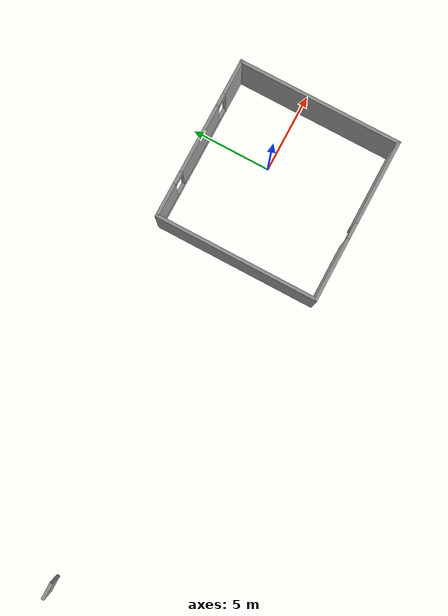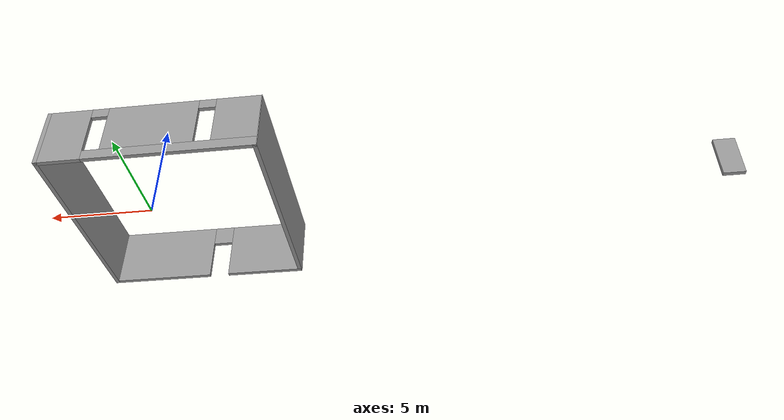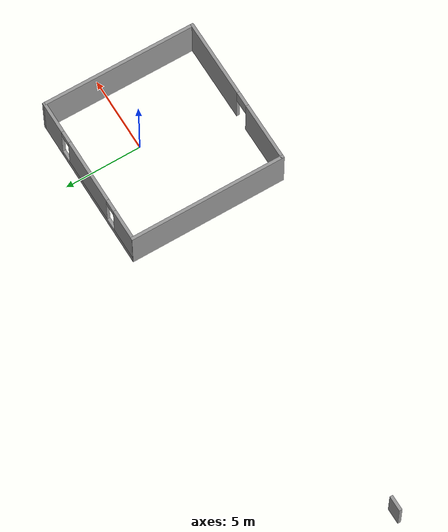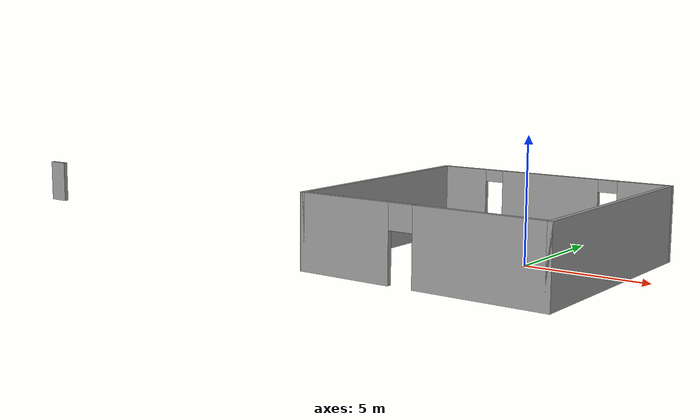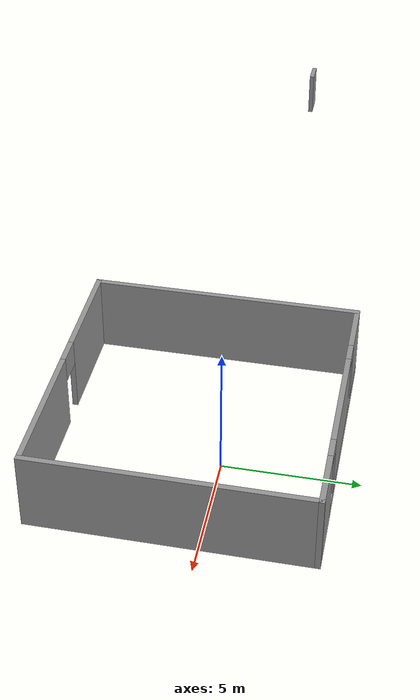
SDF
<?xml version='1.0'?>
<sdf version='1.4'>
  <model name='NASLab'>
    <link name='Door_0'>
      <collision name='Door_0_Collision'>
        <geometry>
          <box>
            <size>1 0.2 2</size>
          </box>
        </geometry>
        <pose>0 0 1 0 -0 0</pose>
      </collision>
      <visual name='Door_0_Visual'>
        <pose>0 0 1 0 -0 0</pose>
        <geometry>
          <box>
            <size>1 0.2 2</size>
          </box>
        </geometry>
        <material>
          <script>
            <uri>file://media/materials/scripts/gazebo.material</uri>
            <name>Gazebo/Grey</name>
          </script>
        </material>
      </visual>
      <velocity_decay>
        <linear>0</linear>
        <angular>0</angular>
      </velocity_decay>
      <pose>-27.0979 -0.482128 0 0 -0 0</pose>
    </link>
    <link name='Wall_10'>
      <pose>-1 4 0 0 -0 3.14159</pose>
      <visual name='Wall_10_Visual_0'>
        <pose>-4.00121 0 1.5 0 -0 0</pose>
        <geometry>
          <box>
            <size>2.19758 0.2 3</size>
          </box>
        </geometry>
        <material>
          <script>
            <uri>file://media/materials/scripts/gazebo.material</uri>
            <name>Gazebo/Grey</name>
          </script>
        </material>
      </visual>
      <collision name='Wall_10_Collision_0'>
        <geometry>
          <box>
            <size>2.19758 0.2 3</size>
          </box>
        </geometry>
        <pose>-4.00121 0 1.5 0 -0 0</pose>
      </collision>
      <visual name='Wall_10_Visual_1'>
        <pose>1.09879 0 0.25 0 -0 0</pose>
        <geometry>
          <box>
            <size>8.00242 0.2 0.5</size>
          </box>
        </geometry>
        <material>
          <script>
            <uri>file://media/materials/scripts/gazebo.material</uri>
            <name>Gazebo/Grey</name>
          </script>
        </material>
      </visual>
      <collision name='Wall_10_Collision_1'>
        <geometry>
          <box>
            <size>8.00242 0.2 0.5</size>
          </box>
        </geometry>
        <pose>1.09879 0 0.25 0 -0 0</pose>
      </collision>
      <visual name='Wall_10_Visual_2'>
        <pose>0.048036 0 1.75 0 -0 0</pose>
        <geometry>
          <box>
            <size>4.30092 0.2 2.5</size>
          </box>
        </geometry>
        <material>
          <script>
            <uri>file://media/materials/scripts/gazebo.material</uri>
            <name>Gazebo/Grey</name>
          </script>
        </material>
      </visual>
      <collision name='Wall_10_Collision_2'>
        <geometry>
          <box>
            <size>4.30092 0.2 2.5</size>
          </box>
        </geometry>
        <pose>0.048036 0 1.75 0 -0 0</pose>
      </collision>
      <visual name='Wall_10_Visual_3'>
        <pose>4.04925 0 1.75 0 -0 0</pose>
        <geometry>
          <box>
            <size>2.1015 0.2 2.5</size>
          </box>
        </geometry>
        <material>
          <script>
            <uri>file://media/materials/scripts/gazebo.material</uri>
            <name>Gazebo/Grey</name>
          </script>
        </material>
      </visual>
      <collision name='Wall_10_Collision_3'>
        <geometry>
          <box>
            <size>2.1015 0.2 2.5</size>
          </box>
        </geometry>
        <pose>4.04925 0 1.75 0 -0 0</pose>
      </collision>
      <visual name='Wall_10_Visual_4'>
        <pose>-2.50242 0 2.75 0 -0 0</pose>
        <geometry>
          <box>
            <size>0.8 0.2 0.5</size>
          </box>
        </geometry>
        <material>
          <script>
            <uri>file://media/materials/scripts/gazebo.material</uri>
            <name>Gazebo/Grey</name>
          </script>
        </material>
      </visual>
      <collision name='Wall_10_Collision_4'>
        <geometry>
          <box>
            <size>0.8 0.2 0.5</size>
          </box>
        </geometry>
        <pose>-2.50242 0 2.75 0 -0 0</pose>
      </collision>
      <visual name='Wall_10_Visual_5'>
        <pose>2.5985 0 2.75 0 -0 0</pose>
        <geometry>
          <box>
            <size>0.8 0.2 0.5</size>
          </box>
        </geometry>
        <material>
          <script>
            <uri>file://media/materials/scripts/gazebo.material</uri>
            <name>Gazebo/Grey</name>
          </script>
        </material>
      </visual>
      <collision name='Wall_10_Collision_5'>
        <geometry>
          <box>
            <size>0.8 0.2 0.5</size>
          </box>
        </geometry>
        <pose>2.5985 0 2.75 0 -0 0</pose>
      </collision>
    </link>
    <link name='Wall_12'>
      <collision name='Wall_12_Collision'>
        <geometry>
          <box>
            <size>10.2 0.2 3</size>
          </box>
        </geometry>
        <pose>0 0 1.5 0 -0 0</pose>
      </collision>
      <visual name='Wall_12_Visual'>
        <pose>0 0 1.5 0 -0 0</pose>
        <geometry>
          <box>
            <size>10.2 0.2 3</size>
          </box>
        </geometry>
        <material>
          <script>
            <uri>file://media/materials/scripts/gazebo.material</uri>
            <name>Gazebo/Grey</name>
          </script>
        </material>
      </visual>
      <velocity_decay>
        <linear>0</linear>
        <angular>0</angular>
      </velocity_decay>
      <pose>-6.035 -1 0 0 0 -1.5708</pose>
    </link>
    <link name='Wall_6'>
      <pose>-1 -6 0 0 -0 0</pose>
      <visual name='Wall_6_Visual_0'>
        <pose>-3.13183 0 1.5 0 -0 0</pose>
        <geometry>
          <box>
            <size>3.93634 0.2 3</size>
          </box>
        </geometry>
        <material>
          <script>
            <uri>file://media/materials/scripts/gazebo.material</uri>
            <name>Gazebo/Grey</name>
          </script>
        </material>
      </visual>
      <collision name='Wall_6_Collision_0'>
        <geometry>
          <box>
            <size>3.93634 0.2 3</size>
          </box>
        </geometry>
        <pose>-3.13183 0 1.5 0 -0 0</pose>
      </collision>
      <visual name='Wall_6_Visual_1'>
        <pose>2.46817 0 1.5 0 -0 0</pose>
        <geometry>
          <box>
            <size>5.26366 0.2 3</size>
          </box>
        </geometry>
        <material>
          <script>
            <uri>file://media/materials/scripts/gazebo.material</uri>
            <name>Gazebo/Grey</name>
          </script>
        </material>
      </visual>
      <collision name='Wall_6_Collision_1'>
        <geometry>
          <box>
            <size>5.26366 0.2 3</size>
          </box>
        </geometry>
        <pose>2.46817 0 1.5 0 -0 0</pose>
      </collision>
      <visual name='Wall_6_Visual_2'>
        <pose>-0.663665 0 2.5 0 -0 0</pose>
        <geometry>
          <box>
            <size>1 0.2 1</size>
          </box>
        </geometry>
        <material>
          <script>
            <uri>file://media/materials/scripts/gazebo.material</uri>
            <name>Gazebo/Grey</name>
          </script>
        </material>
      </visual>
      <collision name='Wall_6_Collision_2'>
        <geometry>
          <box>
            <size>1 0.2 1</size>
          </box>
        </geometry>
        <pose>-0.663665 0 2.5 0 -0 0</pose>
      </collision>
    </link>
    <link name='Wall_8'>
      <collision name='Wall_8_Collision'>
        <geometry>
          <box>
            <size>10.2 0.2 3</size>
          </box>
        </geometry>
        <pose>0 0 1.5 0 -0 0</pose>
      </collision>
      <visual name='Wall_8_Visual'>
        <pose>0 0 1.5 0 -0 0</pose>
        <geometry>
          <box>
            <size>10.2 0.2 3</size>
          </box>
        </geometry>
        <material>
          <script>
            <uri>file://media/materials/scripts/gazebo.material</uri>
            <name>Gazebo/Grey</name>
          </script>
        </material>
      </visual>
      <velocity_decay>
        <linear>0</linear>
        <angular>0</angular>
      </velocity_decay>
      <pose>4 -1 0 0 -0 1.5708</pose>
    </link>
    <static>1</static>
  </model>
</sdf>
